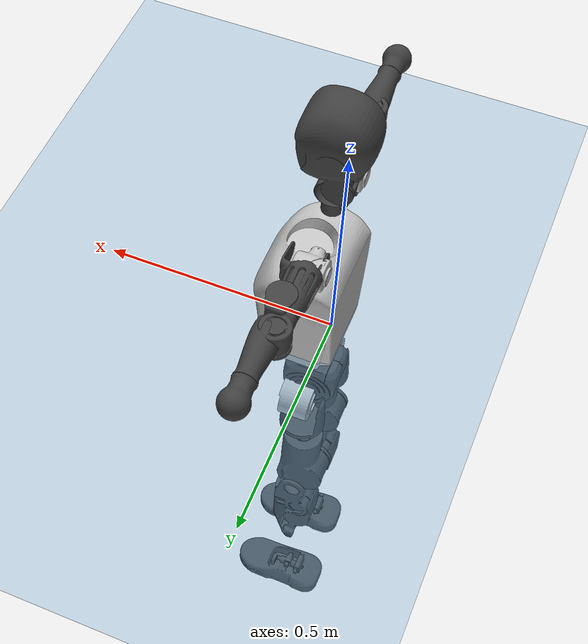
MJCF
<mujoco model="T1">
  <compiler angle="radian" assetdir="assets" balanceinertia="true" inertiafromgeom="false"/>

  <option timestep="0.005" density="1.2" viscosity="2e-05"/>

  <size nkey="1"/>

  <visual>
    <quality shadowsize="8192"/>
    <map shadowclip="0.5"/>
  </visual>

  <default>
    <default class="/">
      <joint armature="0.01" damping="0.01" frictionloss="0.1"/>
      <geom contype="0" conaffinity="0" group="1" solref="-1000 -80"/>
      <site size="0.01 0.005 0.005" group="5"/>
      <general forcelimited="true" biastype="affine" gainprm="25" biasprm="0 -25 -0.6"/>
      <default class="t1">
        <geom rgba="0.25 0.25 0.25 1"/>
        <default class="visual">
          <geom type="mesh" group="2"/>
        </default>
        <default class="collision">
          <geom group="3"/>
        </default>
        <default class="foot">
          <geom size="0.1115 0.05 0.015" type="box" condim="6" group="4" priority="1" solimp="0.015 1 0.015"/>
        </default>
        <default class="reward_collision_sphere">
          <geom group="5" rgba="1 0 0 1"/>
        </default>
      </default>
    </default>
  </default>

  <asset>
    <texture type="skybox" colorspace="auto" name="//unnamed_texture_0" builtin="gradient" rgb1="0.95 0.95 0.95" rgb2="0.95 0.95 0.95" width="100" height="600"/>
    <texture type="2d" colorspace="auto" name="texplane" builtin="checker" rgb1="0.345 0.575 0.748" rgb2="0.345 0.575 0.748" markrgb="1 1 1" width="512" height="512"/>
    <material name="MatPlane" class="/" texture="texplane" texuniform="true" texrepeat="2 2" specular="0.9"/>
    <mesh name="Trunk" class="/" file="Trunk.stl"/>
    <mesh name="H1" class="/" file="H1.stl"/>
    <mesh name="H2" class="/" file="H2.stl"/>
    <mesh name="AL1" class="/" file="AL1.stl"/>
    <mesh name="AL2" class="/" file="AL2.stl"/>
    <mesh name="AL3" class="/" file="AL3.stl"/>
    <mesh name="left_hand_link" class="/" file="left_hand_link.stl"/>
    <mesh name="AR1" class="/" file="AR1.stl"/>
    <mesh name="AR2" class="/" file="AR2.stl"/>
    <mesh name="AR3" class="/" file="AR3.stl"/>
    <mesh name="right_hand_link" class="/" file="right_hand_link.stl"/>
    <mesh name="Waist" class="/" file="Waist.stl"/>
    <mesh name="Hip_Pitch_Left" class="/" file="Hip_Pitch_Left.stl"/>
    <mesh name="Hip_Roll_Left" class="/" file="Hip_Roll_Left.stl"/>
    <mesh name="Hip_Yaw_Left" class="/" file="Hip_Yaw_Left.stl"/>
    <mesh name="Shank_Left" class="/" file="Shank_Left.stl"/>
    <mesh name="Ankle_Cross_Left" class="/" file="Ankle_Cross_Left.stl"/>
    <mesh name="left_foot_link" class="/" file="left_foot_link.stl"/>
    <mesh name="Hip_Pitch_Right" class="/" file="Hip_Pitch_Right.stl"/>
    <mesh name="Hip_Roll_Right" class="/" file="Hip_Roll_Right.stl"/>
    <mesh name="Hip_Yaw_Right" class="/" file="Hip_Yaw_Right.stl"/>
    <mesh name="Shank_Right" class="/" file="Shank_Right.stl"/>
    <mesh name="Ankle_Cross_Right" class="/" file="Ankle_Cross_Right.stl"/>
    <mesh name="right_foot_link" class="/" file="right_foot_link.stl"/>
  </asset>

  <worldbody>
    <geom name="floor" class="/" size="100 100 0.125" type="plane" group="0" material="MatPlane"/>
    <light name="toplight_shadow" class="/" pos="0 0 5" dir="0.0990148 0.0990148 -0.990148" type="directional" ambient="0.04 0.04 0.04" diffuse="0.55 0.55 0.55" specular="0.12 0.12 0.12"/>
    <light name="toplight_fill" class="/" pos="0 0 5" dir="0.0990148 0.0990148 -0.990148" type="directional" castshadow="false" ambient="0.04 0.04 0.04" diffuse="0.3 0.3 0.3" specular="0.08 0.08 0.08"/>
    <body name="trunk" childclass="t1" pos="-0.00272455 0.00438819 -0.011543" quat="0.999992 0.000642968 -0.00387418 -0.000277533">
      <inertial pos="0.0334295 0.0108083 0.155151" quat="0.99996 -0.00249781 -0.00850522 0.000861059" mass="8.84664" diaginertia="0.000975199 0.0102829 0.467896"/>
      <joint name="//unnamed_joint_0" type="free" armature="0" damping="0" frictionloss="0"/>
      <geom name="//unnamed_geom_1" class="visual" rgba="0.76 0.76 0.76 1" mesh="Trunk"/>
      <geom name="//unnamed_geom_2" class="collision" size="0.0656033 0.0874711 0.131207" pos="0.0249201 0 0.186183" type="box"/>
      <geom name="//unnamed_geom_3" class="reward_collision_sphere" size="0.100592" pos="0.0249201 0 0.155152"/>
      <geom name="//unnamed_geom_4" class="reward_collision_sphere" size="0.0131207" pos="0.0249201 0.0558684 0"/>
      <geom name="//unnamed_geom_5" class="reward_collision_sphere" size="0.0131207" pos="0.0249201 -0.0558684 0"/>
      <geom name="//unnamed_geom_6" class="reward_collision_sphere" size="0.0131207" pos="0.0249201 0.0703284 0.279274"/>
      <geom name="//unnamed_geom_7" class="reward_collision_sphere" size="0.0131207" pos="0.0249201 -0.0703284 0.279274"/>
      <site name="imu" pos="0.0788154 -0.0808602 0.0776577" size="0.00874711"/>
      <camera name="track" pos="0 -1.31455 0" quat="0.707107 0.707107 0 0" mode="trackcom"/>
      <camera name="ego_camera" pos="0.050671 0 0.651639" quat="-0.5 -0.5 0.5 0.5"/>
      <body name="H1" pos="0.0262989 0.00440998 0.383856" quat="0.99997 -0.00679278 -0.00229008 0.00286138">
        <inertial pos="-0.00141254 -0.00522393 0.0815719" quat="0.752602 -0.000811501 -0.00763516 0.658431" mass="0.19297" diaginertia="2.84824e-06 2.05692e-05 0.0011153"/>
        <joint name="AAHead_yaw" pos="0 0 0" axis="-0.0467752 0.0209927 0.998685" stiffness="0.0273118" range="-1.65274 1.60356" armature="0.00107287" damping="0.0648821" frictionloss="0.0814908"/>
        <geom name="//unnamed_geom_8" class="visual" mesh="H1"/>
        <body name="H2" pos="-0.0175117 0.0104396 0.0952832" quat="0.999989 0.00427219 -6.15714e-05 -0.00207795">
          <inertial pos="0.00411457 -0.00446246 0.155787" quat="0.984908 0.123292 -0.0738013 -0.0964821" mass="0.451436" diaginertia="2.43011e-05 0.000241399 0.0134138"/>
          <joint name="Head_pitch" pos="0 0 0" axis="0.036379 -0.998241 0.0468201" range="-1.11734 0.561758" armature="0.00588072" damping="0.04556" frictionloss="0.105593"/>
          <geom name="//unnamed_geom_9" class="visual" mesh="H2"/>
          <geom name="//unnamed_geom_10" class="collision" size="0.0699769" pos="0.00415336 0 0.170667"/>
          <geom name="//unnamed_geom_11" class="reward_collision_sphere" size="0.078724" pos="0.00830672 0 0.155152"/>
        </body>
      </body>
      <body name="AL1" pos="0.0233058 0.070379 0.332986" quat="0.99998 -0.00579227 0.000668828 0.00260498">
        <inertial pos="0.00105675 0.0157343 -0.000425772" quat="0.524503 0.490908 -0.49429 0.489472" mass="0.344137" diaginertia="1.47412e-05 0.000175761 0.00292266"/>
        <joint name="Left_Shoulder_Pitch" pos="0 0 0" axis="0.0076372 0.999952 0.00612589" stiffness="0.0391579" range="-3.47632 1.2963" armature="0.0114318" damping="0" frictionloss="0.135791"/>
        <geom name="//unnamed_geom_12" class="visual" rgba="0.76 0.76 0.76 1" mesh="AL1"/>
        <body name="AL2" pos="0.0134707 0.0213742 0.000124586" quat="1 0.000482319 -6.36552e-05 -2.66387e-05">
          <inertial pos="-0.000809809 0.0312334 -0.0144764" quat="0.480658 0.51524 -0.482447 0.520328" mass="0.0750968" diaginertia="4.27458e-06 4.29378e-05 0.0011916"/>
          <joint name="Left_Shoulder_Roll" pos="0 0 0" axis="-0.999474 0.0188923 0.0263637" range="-1.88356 1.43181" armature="0.0148773" damping="0.0609397" frictionloss="0.0890997"/>
          <geom name="//unnamed_geom_13" class="visual" mesh="AL2"/>
          <body name="AL3" pos="-0.0111781 0.0424186 0.0140789" quat="0.999998 -0.00154117 0.00150853 -0.0001061">
            <inertial pos="-0.0112445 0.0557068 -0.00199698" quat="0.697129 0.715492 0.0305304 -0.0339118" mass="0.786956" diaginertia="0.000199886 0.00147388 0.00736188"/>
            <joint name="Left_Elbow_Pitch" pos="0 0 0" axis="0.0568556 -0.996452 -0.0620591" stiffness="0.081676" range="-2.58575 2.00305" armature="0.0163091" damping="0.0954098" frictionloss="0.140293"/>
            <geom name="//unnamed_geom_14" class="visual" mesh="AL3"/>
            <geom name="//unnamed_geom_15" class="collision" size="0.0262413 0.0656033" pos="0 0.0328637 0" quat="0.707105 0.707108 0 0" type="cylinder"/>
            <geom name="//unnamed_geom_16" class="reward_collision_sphere" size="0.0314896"/>
            <body name="left_hand_link" pos="0.0133067 0.0840694 0.00300112" quat="0.99999 0.00389023 -0.00218186 0.000909835">
              <inertial pos="0.0045821 0.0673273 -0.00919662" quat="0.706215 0.707994 -0.000880643 0.00201544" mass="0.216906" diaginertia="8.69829e-05 0.000853425 0.00194567"/>
              <joint name="Left_Elbow_Yaw" pos="0 0 0" axis="0.0353533 -0.044856 0.998368" stiffness="0.0321274" range="-2.25452 -0.0635462" armature="0.00117396" damping="0" frictionloss="0.133201"/>
              <geom name="//unnamed_geom_17" class="visual" mesh="left_hand_link"/>
              <geom name="//unnamed_geom_18" class="collision" size="0.0262413 0.0765372" pos="0 0.0854457 0" quat="0.707105 0.707108 0 0" type="cylinder"/>
              <geom name="//unnamed_geom_19" class="reward_collision_sphere" size="0.0437355"/>
              <geom name="//unnamed_geom_20" class="reward_collision_sphere" size="0.0306149" pos="0 0.0723002 0"/>
              <geom name="//unnamed_geom_21" class="reward_collision_sphere" size="0.0306149" pos="0 0.141314 0"/>
            </body>
          </body>
        </body>
      </body>
      <body name="AR1" pos="0.0375857 -0.0798609 0.338337" quat="0.999999 -4.85571e-05 -0.00039574 -0.001522">
        <inertial pos="0.0149938 -0.0378082 -0.0121203" quat="0.438067 0.547979 -0.505266 0.502516" mass="0.302413" diaginertia="1.83395e-05 0.000172429 0.00204823"/>
        <joint name="Right_Shoulder_Pitch" pos="0 0 0" axis="0.00662418 -0.999977 0.00138988" range="-1.2054 3.30941" armature="0.00837656" damping="0.000718535" frictionloss="0.139892"/>
        <geom name="//unnamed_geom_22" class="visual" rgba="0.76 0.76 0.76 1" mesh="AR1"/>
        <body name="AR2" pos="0.00652946 -0.0233643 -2.05256e-06" quat="0.999993 -0.000433432 0.000433464 0.0036289">
          <inertial pos="-0.0052048 -0.0293803 -0.00899951" quat="0.510561 0.489274 -0.512307 0.487319" mass="0.110553" diaginertia="4.71994e-06 3.43736e-05 0.00137391"/>
          <joint name="Right_Shoulder_Roll" pos="0 0 0" axis="-0.999168 0.0346506 -0.0215139" stiffness="0.0206636" range="-1.93439 1.24658" armature="0.0136393" damping="0" frictionloss="0.066777"/>
          <geom name="//unnamed_geom_23" class="visual" mesh="AR2"/>
          <body name="AR3" pos="0.00366143 -0.0350052 -0.00387927" quat="1 -3.20933e-06 4.89419e-05 3.21955e-05">
            <inertial pos="-0.000504777 -0.040621 -0.013115" quat="0.732781 0.678702 0.0407695 -0.0270827" mass="0.624388" diaginertia="0.000138848 0.0017939 0.00463294"/>
            <joint name="Right_Elbow_Pitch" pos="0 0 0" axis="0.0359884 0.998964 0.0278519" range="-2.48459 2.51669" armature="0.00777767" damping="0" frictionloss="0.0896567"/>
            <geom name="//unnamed_geom_24" class="visual" mesh="AR3"/>
            <geom name="//unnamed_geom_25" class="collision" size="0.0262413 0.0656033" pos="0 -0.0328637 0" quat="0.707105 0.707108 0 0" type="cylinder"/>
            <geom name="//unnamed_geom_26" class="reward_collision_sphere" size="0.0314896"/>
            <body name="right_hand_link" pos="0.00409304 -0.0955737 0.00590467" quat="0.99999 0.00101105 0.00350861 -0.00248276">
              <inertial pos="-0.00146305 -0.0672873 0.0143077" quat="0.699238 0.714729 0.00526156 -0.0141882" mass="0.244483" diaginertia="9.48461e-05 0.00101951 0.0022636"/>
              <joint name="Right_Elbow_Yaw" pos="0 0 0" axis="0.0100963 -0.0175241 0.999795" stiffness="0.00110023" range="-0.0892553 2.41598" armature="0.00781711" damping="0.0383178" frictionloss="0.0367753"/>
              <geom name="//unnamed_geom_27" class="visual" mesh="right_hand_link"/>
              <geom name="//unnamed_geom_28" class="collision" size="0.0262413 0.0765372" pos="0 -0.0854457 0" quat="0.707105 0.707108 0 0" type="cylinder"/>
              <geom name="//unnamed_geom_29" class="reward_collision_sphere" size="0.0437355"/>
              <geom name="//unnamed_geom_30" class="reward_collision_sphere" size="0.0306149" pos="0 -0.0723002 0"/>
              <geom name="//unnamed_geom_31" class="reward_collision_sphere" size="0.0306149" pos="0 -0.141314 0"/>
            </body>
          </body>
        </body>
      </body>
      <body name="Waist" pos="0.0275693 -0.00454839 -0.179848" quat="0.999986 0.00247362 -0.00351378 0.00304617">
        <inertial pos="0.0189422 -0.012256 0.0110303" quat="0.983618 0.019081 -0.179228 0.00297407" mass="2.05247" diaginertia="8.76409e-05 0.000767386 0.0411323"/>
        <joint name="Waist" pos="0 0 0" axis="0.0520954 -0.0611645 0.996767" range="-1.71854 1.72308" armature="0.0127832" damping="0" frictionloss="0.0936195"/>
        <geom name="//unnamed_geom_32" class="visual" mesh="Waist"/>
        <body name="Hip_Pitch_Left" pos="0.0148995 0.0591695 -0.0120708" quat="0.999961 0.00869638 -0.00140387 -0.00106827">
          <inertial pos="0.0134721 -0.020676 -0.0265098" quat="0.977433 0.210403 0.018269 0.00456297" mass="0.727023" diaginertia="2.68092e-05 0.000232182 0.0108579"/>
          <joint name="Left_Hip_Pitch" pos="0 0 0" axis="0.034961 0.999109 0.023647" range="-1.67802 1.51674" armature="0.0150047" damping="0.0157877" frictionloss="0.0161514"/>
          <geom name="//unnamed_geom_33" class="visual" rgba="0.76 0.76 0.76 1" mesh="Hip_Pitch_Left"/>
          <body name="Hip_Roll_Left" pos="-0.0175196 0.0120868 -0.0134819" quat="0.999961 -0.000257534 -0.00763115 -0.00435433">
            <inertial pos="-0.0105887 0.00873233 -0.0678872" quat="0.70456 -0.0243497 -0.0042174 0.709214" mass="0.269363" diaginertia="2.10398e-05 0.000163686 0.00432903"/>
            <joint name="Left_Hip_Roll" pos="0 0 0" axis="-0.999573 -0.026673 0.0119649" range="-1.55484 0.156263" armature="0.00412076" damping="0" frictionloss="0.0899763"/>
            <geom name="//unnamed_geom_34" class="visual" mesh="Hip_Roll_Left"/>
            <geom name="//unnamed_geom_35" class="reward_collision_sphere" size="0.0481091"/>
            <body name="Hip_Yaw_Left" pos="-0.00898297 -0.00735913 -0.137065" quat="0.999996 0.00106949 0.00171462 -0.00196874">
              <inertial pos="-0.00341313 -0.0175079 -0.153803" quat="0.701123 -0.0655601 -0.040385 0.70887" mass="1.60324" diaginertia="0.000353734 0.00345141 0.0242489"/>
              <joint name="Left_Hip_Yaw" pos="0 0 0" axis="0.0235621 0.0302009 -0.999266" range="-0.981147 1.03524" armature="0.00880866" damping="0.0255662" frictionloss="0.0373536"/>
              <geom name="//unnamed_geom_36" class="visual" mesh="Hip_Yaw_Left"/>
              <geom name="//unnamed_geom_37" class="collision" size="0.0437355 0.0699769" type="cylinder"/>
              <body name="Shank_Left" pos="-0.00380435 0.00139603 -0.197076" quat="0.999978 0.00259641 0.00561557 -0.00234559">
                <inertial pos="-0.00388898 0.0120663 -0.201415" quat="0.998456 0.0228343 -0.050627 -0.000741081" mass="1.32515" diaginertia="0.000461602 0.003974 0.0179849"/>
                <joint name="Left_Knee_Pitch" pos="0 0 0" axis="0.00113584 0.999347 0.0361091" range="0.0224323 2.6213" armature="0.00260825" damping="0.0495208" frictionloss="0.0904493"/>
                <geom name="//unnamed_geom_38" class="visual" mesh="Shank_Left"/>
                <geom name="//unnamed_geom_39" class="collision" size="0.0437355 0.0656033" pos="0 0 -0.186183" type="cylinder"/>
                <geom name="//unnamed_geom_40" class="reward_collision_sphere" size="0.0568562"/>
                <body name="Ankle_Cross_Left" pos="-0.0096405 0.0131186 -0.437858" quat="0.99999 0.00262025 0.00346385 0.000516648">
                  <inertial pos="0.0032299 -0.00179666 -0.0197811" quat="0.478383 0.527474 0.575071 0.402758" mass="0.0510903" diaginertia="2.7661e-07 2.9237e-06 9.34561e-05"/>
                  <joint name="Left_Ankle_Pitch" pos="0 0 0" axis="-0.00511168 0.999964 0.00680787" range="-0.549762 0.0310779" armature="0.004214" damping="0.0932262" frictionloss="0.0404511"/>
                  <geom name="//unnamed_geom_41" class="visual" mesh="Ankle_Cross_Left"/>
                  <body name="left_foot_link" pos="0.010317 0.0102483 -0.00418381" quat="0.999968 0.00301308 -0.00655942 0.00351877">
                    <inertial pos="0.00605715 -0.00567285 -0.0173153" quat="-0.0563301 0.640777 0.0184352 0.765435" mass="0.35167" diaginertia="2.87651e-05 0.000220513 0.0119707"/>
                    <joint name="Left_Ankle_Roll" pos="0 0 0" axis="-0.997494 0.030808 0.063692" range="-0.496568 0.112237" armature="0.00773893" damping="0" frictionloss="0.00900558"/>
                    <geom name="//unnamed_geom_42" class="visual" mesh="left_foot_link"/>
                    <geom name="left_foot" class="foot" size="0.08038 0.061713 0.00432457" pos="0.00415336 0 -0.0232728"/>
                    <geom name="//unnamed_geom_44" class="reward_collision_sphere" size="0.045485" pos="0.00415336 0 -0.0232728"/>
                    <geom name="//unnamed_geom_45" class="reward_collision_sphere" size="0.0262413" pos="0.0394569 -0.0151173 -0.0232728"/>
                    <geom name="//unnamed_geom_46" class="reward_collision_sphere" size="0.0262413" pos="-0.0290735 -0.0151173 -0.0232728"/>
                    <site name="left_foot" class="foot" pos="0.00415336 0 -0.0232728" size="0.00874711"/>
                  </body>
                </body>
              </body>
            </body>
          </body>
        </body>
        <body name="Hip_Pitch_Right" pos="0.001889 -0.0657749 0.00161317" quat="0.999998 0.000863407 -0.0019492 0.000515561">
          <inertial pos="0.00883772 0.00524328 -0.0186936" quat="0.974424 -0.214793 -0.0631981 0.019162" mass="0.914451" diaginertia="2.68274e-05 0.00019087 0.0149124"/>
          <joint name="Right_Hip_Pitch" pos="0 0 0" axis="0.00738018 -0.999542 -0.0293532" range="-1.63053 2.00251" armature="0.00441632" damping="0" frictionloss="0.0824107"/>
          <geom name="//unnamed_geom_47" class="visual" rgba="0.76 0.76 0.76 1" mesh="Hip_Pitch_Right"/>
          <body name="Hip_Roll_Right" pos="-0.0104024 0.00205019 -0.0159582" quat="0.999997 0.000956922 0.00101094 0.00196468">
            <inertial pos="0.00305519 -0.0115888 -0.0837828" quat="0.739405 -0.0462251 -0.0113246 0.671576" mass="0.277231" diaginertia="1.92942e-05 0.000165996 0.00504521"/>
            <joint name="Right_Hip_Roll" pos="0 0 0" axis="-0.999516 0.0248258 0.018766" stiffness="0.0882857" range="-0.0963037 1.58465" armature="0.0137991" damping="0.000318353" frictionloss="0.0835405"/>
            <geom name="//unnamed_geom_48" class="visual" mesh="Hip_Roll_Right"/>
            <geom name="//unnamed_geom_49" class="reward_collision_sphere" size="0.0481091"/>
            <body name="Hip_Yaw_Right" pos="0.0143781 -0.0171406 -0.122438" quat="1 -0.000153298 -2.71422e-05 0.000107329">
              <inertial pos="0.00992765 0.000621744 -0.121833" quat="0.669438 -0.0088661 -0.0321548 0.742119" mass="1.1181" diaginertia="0.000288209 0.00274887 0.0206224"/>
              <joint name="Right_Hip_Yaw" pos="0 0 0" axis="-0.0141819 -0.0208 -0.999683" stiffness="0.0354243" range="-1.29102 1.20916" armature="0.00697553" damping="0.0341454" frictionloss="0.086359"/>
              <geom name="//unnamed_geom_50" class="visual" mesh="Hip_Yaw_Right"/>
              <geom name="//unnamed_geom_51" class="collision" size="0.0437355 0.0699769" type="cylinder"/>
              <body name="Shank_Right" pos="-0.0107666 -0.0125651 -0.220325" quat="1 -0.000257211 -0.000244135 -0.000280447">
                <inertial pos="-0.0203414 -0.00474584 -0.181455" quat="0.995888 0.0625414 -0.0421138 -0.0502237" mass="1.61297" diaginertia="0.000513174 0.00412532 0.0206816"/>
                <joint name="Right_Knee_Pitch" pos="0 0 0" axis="0.0344652 -0.997866 0.0554616" range="-2.28964 -0.118101" armature="0.00443947" damping="0.0554822" frictionloss="0.0305354"/>
                <geom name="//unnamed_geom_52" class="visual" mesh="Shank_Right"/>
                <geom name="//unnamed_geom_53" class="collision" size="0.0437355 0.0656033" pos="0 0 -0.186183" type="cylinder"/>
                <geom name="//unnamed_geom_54" class="reward_collision_sphere" size="0.0568562"/>
                <body name="Ankle_Cross_Right" pos="0.00988046 0.0163705 -0.431697" quat="0.999969 0.00309451 0.00408638 0.00593435">
                  <inertial pos="0.00390681 0.000904643 -0.00782484" quat="0.446305 0.543348 0.551841 0.448392" mass="0.0483251" diaginertia="4.32591e-07 3.22619e-06 0.000113854"/>
                  <joint name="Right_Ankle_Pitch" pos="0 0 0" axis="-0.0376849 -0.999139 0.0173376" range="-0.161667 0.541207" armature="0.0101091" damping="0" frictionloss="0.0883604"/>
                  <geom name="//unnamed_geom_55" class="visual" mesh="Ankle_Cross_Right"/>
                  <body name="right_foot_link" pos="-0.00269311 0.000763438 -0.00744121" quat="0.999978 0.00309168 0.0056141 0.00163556">
                    <inertial pos="0.0129568 0.00535253 -0.0142005" quat="-0.0098662 0.634588 0.0294102 0.772228" mass="0.465894" diaginertia="4.02734e-05 0.000337888 0.0217383"/>
                    <joint name="Right_Ankle_Roll" pos="0 0 0" axis="-0.99994 0.00681356 -0.00858087" range="-0.650021 0.631359" armature="0.00592516" damping="0" frictionloss="0.06115"/>
                    <geom name="//unnamed_geom_56" class="visual" mesh="right_foot_link"/>
                    <geom name="right_foot" class="foot" size="0.0967495 0.058396 0.0146657" pos="0.00415336 0 -0.0232728"/>
                    <geom name="//unnamed_geom_58" class="reward_collision_sphere" size="0.0349884"/>
                    <geom name="//unnamed_geom_59" class="reward_collision_sphere" size="0.0262413" pos="0.00415336 0 -0.0232728"/>
                    <geom name="//unnamed_geom_60" class="reward_collision_sphere" size="0.0262413" pos="0.0394569 0.0151173 -0.0232728"/>
                    <geom name="//unnamed_geom_61" class="reward_collision_sphere" size="0.0262413" pos="-0.0290735 0.0151173 -0.0232728"/>
                    <site name="right_foot" class="foot" pos="0.00415336 0 -0.0232728" size="0.00874711"/>
                  </body>
                </body>
              </body>
            </body>
          </body>
        </body>
      </body>
    </body>
  </worldbody>

  <contact>
    <pair class="/" geom1="floor" geom2="left_foot" name="//unnamed_contact_0"/>
    <pair class="/" geom1="floor" geom2="right_foot" name="//unnamed_contact_1"/>
  </contact>

  <actuator>
    <general name="AAHead_yaw" class="/" joint="AAHead_yaw" forcerange="-7.78645 7.78645" gainprm="30.5323" biasprm="0 -30.5323 -0.555297"/>
    <general name="Head_pitch" class="/" joint="Head_pitch" forcerange="-4.7064 4.7064" gainprm="30.5323" biasprm="0 -30.5323 -0.555297"/>
    <general name="Left_Shoulder_Pitch" class="/" joint="Left_Shoulder_Pitch" forcerange="-13.241 13.241" gainprm="30.5323" biasprm="0 -30.5323 -0.555297"/>
    <general name="Left_Shoulder_Roll" class="/" joint="Left_Shoulder_Roll" forcerange="-21.7193 21.7193" gainprm="30.5323" biasprm="0 -30.5323 -0.555297"/>
    <general name="Left_Elbow_Pitch" class="/" joint="Left_Elbow_Pitch" forcerange="-25.393 25.393" gainprm="30.5323" biasprm="0 -30.5323 -0.555297"/>
    <general name="Left_Elbow_Yaw" class="/" joint="Left_Elbow_Yaw" forcerange="-7.11649 7.11649" gainprm="30.5323" biasprm="0 -30.5323 -0.555297"/>
    <general name="Right_Shoulder_Pitch" class="/" joint="Right_Shoulder_Pitch" forcerange="-6.7994 6.7994" gainprm="30.5323" biasprm="0 -30.5323 -0.555297"/>
    <general name="Right_Shoulder_Roll" class="/" joint="Right_Shoulder_Roll" forcerange="-20.6881 20.6881" gainprm="30.5323" biasprm="0 -30.5323 -0.555297"/>
    <general name="Right_Elbow_Pitch" class="/" joint="Right_Elbow_Pitch" forcerange="-16.459 16.459" gainprm="30.5323" biasprm="0 -30.5323 -0.555297"/>
    <general name="Right_Elbow_Yaw" class="/" joint="Right_Elbow_Yaw" forcerange="-15.1372 15.1372" gainprm="30.5323" biasprm="0 -30.5323 -0.555297"/>
    <general name="Waist" class="/" joint="Waist" forcerange="-29.5468 29.5468" gainprm="30.5323" biasprm="0 -30.5323 -0.555297"/>
    <general name="Left_Hip_Pitch" class="/" joint="Left_Hip_Pitch" forcerange="-51.7905 51.7905" gainprm="30.5323" biasprm="0 -30.5323 -0.555297"/>
    <general name="Left_Hip_Roll" class="/" joint="Left_Hip_Roll" forcerange="-11.2758 11.2758" gainprm="30.5323" biasprm="0 -30.5323 -0.555297"/>
    <general name="Left_Hip_Yaw" class="/" joint="Left_Hip_Yaw" forcerange="-42.4528 42.4528" gainprm="30.5323" biasprm="0 -30.5323 -0.555297"/>
    <general name="Left_Knee_Pitch" class="/" joint="Left_Knee_Pitch" forcerange="-84.6108 84.6108" gainprm="30.5323" biasprm="0 -30.5323 -0.555297"/>
    <general name="Left_Ankle_Pitch" class="/" joint="Left_Ankle_Pitch" forcerange="-16.6032 16.6032" gainprm="30.5323" biasprm="0 -30.5323 -0.555297"/>
    <general name="Left_Ankle_Roll" class="/" joint="Left_Ankle_Roll" forcerange="-13.3924 13.3924" gainprm="30.5323" biasprm="0 -30.5323 -0.555297"/>
    <general name="Right_Hip_Pitch" class="/" joint="Right_Hip_Pitch" forcerange="-28.8633 28.8633" gainprm="30.5323" biasprm="0 -30.5323 -0.555297"/>
    <general name="Right_Hip_Roll" class="/" joint="Right_Hip_Roll" forcerange="-27.7441 27.7441" gainprm="30.5323" biasprm="0 -30.5323 -0.555297"/>
    <general name="Right_Hip_Yaw" class="/" joint="Right_Hip_Yaw" forcerange="-16.6005 16.6005" gainprm="30.5323" biasprm="0 -30.5323 -0.555297"/>
    <general name="Right_Knee_Pitch" class="/" joint="Right_Knee_Pitch" forcerange="-51.4172 51.4172" gainprm="30.5323" biasprm="0 -30.5323 -0.555297"/>
    <general name="Right_Ankle_Pitch" class="/" joint="Right_Ankle_Pitch" forcerange="-26.7938 26.7938" gainprm="30.5323" biasprm="0 -30.5323 -0.555297"/>
    <general name="Right_Ankle_Roll" class="/" joint="Right_Ankle_Roll" forcerange="-12.9455 12.9455" gainprm="30.5323" biasprm="0 -30.5323 -0.555297"/>
  </actuator>

  <sensor>
    <gyro site="imu" name="imu_angular_velocity"/>
    <velocimeter site="imu" name="imu_linear_velocity"/>
    <framelinvel objtype="site" objname="left_foot" name="left_foot_global_linear_velocity"/>
    <framelinvel objtype="site" objname="right_foot" name="right_foot_global_linear_velocity"/>
  </sensor>

  <keyframe>
    <key name="home" qpos="0 0 0.6385 1 0 0 0 0 0 0 1.4 0 -0.4 0 -1.4 0 0.4 0 -0.4 0 0 0.8 -0.4 0 0.4 0 0 -0.8 0.4 0"/>
  </keyframe>
</mujoco>
